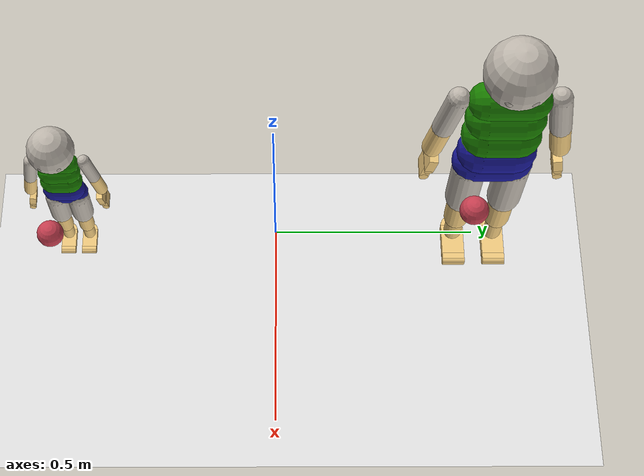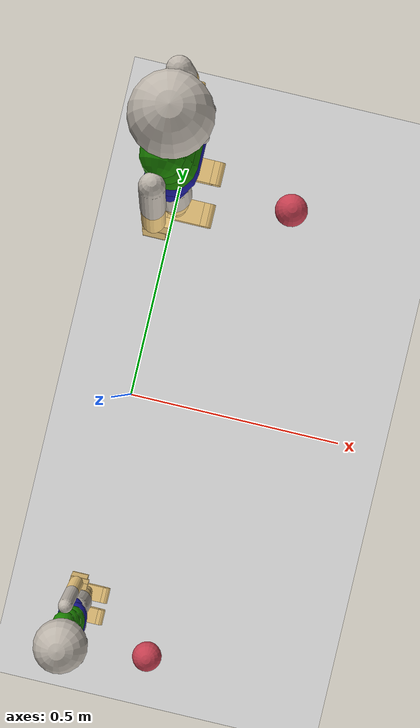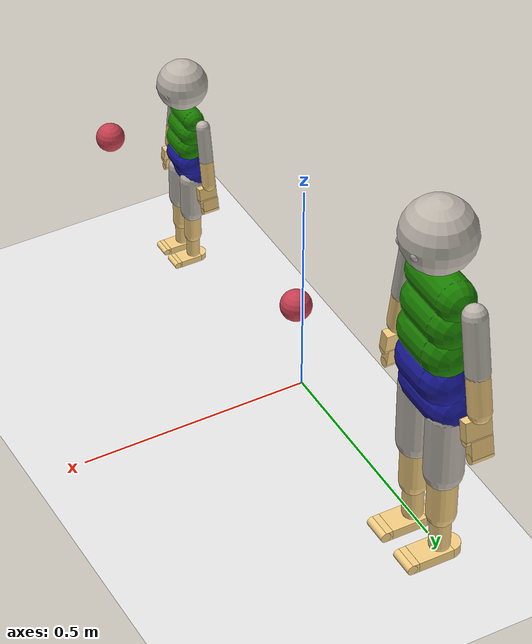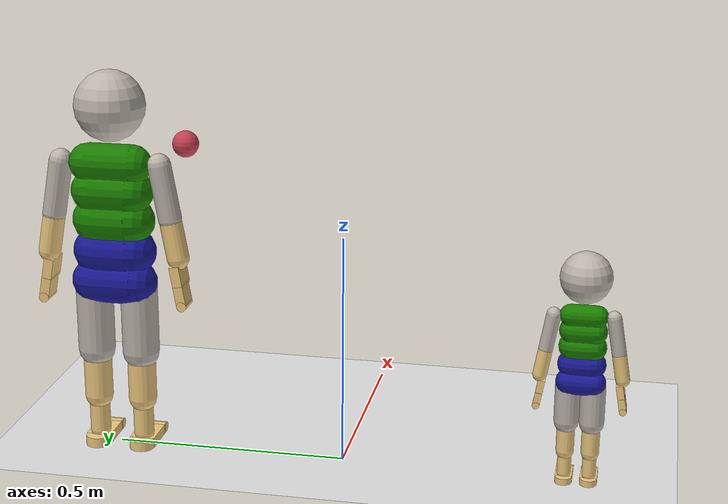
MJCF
<mujoco model="MIMo">

    <compiler inertiafromgeom="true" angle="degree" />
    <option timestep="0.005" iterations="50" tolerance="1e-10" solver="Newton" jacobian="dense" cone="elliptic" impratio="1.0" />
    <size nconmax="1000" njmax="5000" nstack="10000000" />

    <visual>
        <map force="0.1" fogend="10" shadowclip="3" />
        <headlight active="0" />
        <quality shadowsize="0" />
    </visual>

    <default>
		<default class="mimo">
        	<joint limited="true" damping=".1" stiffness=".1" armature="0.001" solimplimit="0.98 0.99 0.001 .5 1" solreflimit="0.02 1" />
        	<geom condim="3" material="skin" friction="1 0.005 0.0002" solimp="0.95 0.99 0.001 0.5 1" solref="0.005 1" />
        	<motor ctrlrange="-1 1" ctrllimited="true" forcelimited="true" />
		</default>
    </default>

    <asset>

        <!-- MIMo. -->
        <texture name="tex_head_default" type="cube" fileright="tex/head_front.png" fileleft="tex/head_back.png" fileup="tex/head_left.png" filedown="tex/head_right.png" filefront="tex/head_top.png" rgb1="0.95 .8 .5" />
		<texture name="tex_head_happy" type="cube" fileright="tex/head_front_happy.png" fileleft="tex/head_back.png" fileup="tex/head_left.png" filedown="tex/head_right.png" filefront="tex/head_top.png" rgb1="0.95 .8 .5" />
		<texture name="tex_head_sad" type="cube" fileright="tex/head_front_sad.png" fileleft="tex/head_back.png" fileup="tex/head_left.png" filedown="tex/head_right.png" filefront="tex/head_top.png" rgb1="0.95 .8 .5" />
		<texture name="tex_head_surprised" type="cube" fileright="tex/head_front_surprised.png" fileleft="tex/head_back.png" fileup="tex/head_left.png" filedown="tex/head_right.png" filefront="tex/head_top.png" rgb1="0.95 .8 .5" />
		<texture name="tex_head_angry" type="cube" fileright="tex/head_front_angry.png" fileleft="tex/head_back.png" fileup="tex/head_left.png" filedown="tex/head_right.png" filefront="tex/head_top.png" rgb1="0.95 .8 .5" />
		<texture name="tex_head_disgusted" type="cube" fileright="tex/head_front_disgusted.png" fileleft="tex/head_back.png" fileup="tex/head_left.png" filedown="tex/head_right.png" filefront="tex/head_top.png" rgb1="0.95 .8 .5" />
		<texture name="tex_head_scared" type="cube" fileright="tex/head_front_scared.png" fileleft="tex/head_back.png" fileup="tex/head_left.png" filedown="tex/head_right.png" filefront="tex/head_top.png" rgb1="0.95 .8 .5" />
		<texture name="tex_top_sleeve" type="cube" fileright="tex/sleeve_right.png" fileleft="tex/sleeve_left.png" fileup="tex/sleeve_up.png" filedown="tex/sleeve_down.png" filefront="tex/sleeve_front.png" fileback="tex/sleeve_back.png" rgb1="0.95 .8 .5" />
		<texture name="tex_pants_leg" type="cube" fileright="tex/leg_right.png" fileleft="tex/leg_left.png" fileup="tex/leg_up.png" filedown="tex/leg_down.png" filefront="tex/leg_front.png" fileback="tex/leg_back.png" rgb1="0.95 .8 .5" />
		<texture name="tex_eye_left" type="cube" fileright="tex/eye_pupil_left.png" rgb1="1 1 1" />
		<texture name="tex_eye_right" type="cube" fileright="tex/eye_pupil_right.png" rgb1="1 1 1" />
		<material name="skin" rgba="0.95 0.8 0.5 1" specular=".15" shininess=".7" />
		<material name="buttons" rgba=".05 .05 .05 1" specular=".9" shininess=".9" />
		<material name="head" texture="tex_head_default" texuniform="true" specular=".0" shininess=".0" />
		<material name="head_happy" texture="tex_head_happy" texuniform="true" specular=".0" shininess=".0" />
		<material name="head_sad" texture="tex_head_sad" texuniform="true" specular=".0" shininess=".0" />
		<material name="head_surprised" texture="tex_head_surprised" texuniform="true" specular=".0" shininess=".0" />
		<material name="head_angry" texture="tex_head_angry" texuniform="true" specular=".0" shininess=".0" />
		<material name="head_scared" texture="tex_head_scared" texuniform="true" specular=".0" shininess=".0" />
		<material name="top_up" rgba=".1 .5 0.0 1" specular=".0" shininess=".0" />
		<material name="top_middle" rgba=".1 .5 0.0 1" specular=".0" shininess=".0" />
		<material name="top_down" rgba=".1 .5 0.0 1" specular=".0" shininess=".0" />
		<material name="top_sleeve" texture="tex_top_sleeve" texuniform="true" specular=".0" shininess=".0" />
		<material name="pants_up" rgba="0.1 0.1 0.6 1" specular=".0" shininess=".0" />
		<material name="pants_down" rgba="0.1 0.1 0.6 1" specular=".0" shininess=".0" />
		<material name="pants_leg" texture="tex_pants_leg" texuniform="true" specular=".0" shininess=".0" />
		<material name="eye_left" texture="tex_eye_left" texuniform="true" specular=".0" shininess=".0" />
		<material name="eye_right" texture="tex_eye_right" texuniform="true" specular=".0" shininess=".0" />

        <!-- Floor. -->
		<texture name="texfloor" builtin="checker" height="100" width="100" rgb1="0.9 0.9 0.9" rgb2="0.9 0.9 0.9" type="2d" mark="edge" markrgb="0.7 0.7 0.7"/>
        <material name="matfloor" reflectance="0" shininess="0" specular="0" texrepeat="25 25" texture="texfloor"/>

        <!-- Colors. -->
        <material name="red" rgba=".79 .25 .32 1" shininess="0.99" reflectance="0"/>

        <!-- Misc. -->
		<texture type="skybox" builtin="gradient" rgb1=".8 .8 .8" rgb2=".9 .9 .9" width="100" height="100"/>
		<material name="mattransparent" reflectance="0" shininess="0" specular="0" rgba="1 1 1 0"/>

    </asset>

    <include file="mimo_ages/MIMo_meta_0.xml" />
    <include file="mimo_ages/MIMo_meta_24.xml" />

    <worldbody>

        <light pos="0 0 5" dir="0 0 -1" directional="true" ambient="0.2 0.2 0.2" diffuse="0.1 0.1 0.1" specular="0 0 0" />
        <light pos="2 2 2" dir="-1 -1 -1" directional="true" ambient="0.05 0.05 0.05" diffuse="0.2 0.2 0.2" specular="0.3 0.3 0.3" castshadow="false" />
        <light pos="2 -2 2" dir="-1 1 -1" directional="true" ambient="0.05 0.05 0.05" diffuse="0.2 0.2 0.2" specular="0.3 0.3 0.3" castshadow="false" />
        <light pos="-2 2 2" dir="1 -1 -1" directional="true" ambient="0.05 0.05 0.05" diffuse="0.2 0.2 0.2" specular="0.3 0.3 0.3" castshadow="false" />
        <light pos="-2 -2 2" dir="1 1 -1" directional="true" ambient="0.05 0.05 0.05" diffuse="0.2 0.2 0.2" specular="0.3 0.3 0.3" castshadow="false" />

        <geom name="transparent" size="2 2 .0001" type="plane"  material="mattransparent" pos="0 0 0" conaffinity="1"/>
        <geom name="floor" size="2 2 .01" type="plane"  material="matfloor" pos="0 0 -0.01" conaffinity="1"/>

        <body name="mimo_location_0" pos="0 -0.5 0.22" euler="0 0 0">
			<freejoint/>
			<include file="mimo_ages/MIMo_model_0.xml" />
		</body>

        <geom name="ball1" type="sphere" size="0.03" pos="0.18 -0.5 0.37" material="red"/>
        <camera name="main1" pos="0.18 -0.5 0.57" euler="0 0 -90" fovy="60"/>

        <body name="mimo_location_24" pos="0 0.5 0.37" euler="0 0 0">
			<freejoint/>
			<include file="mimo_ages/MIMo_model_24.xml" />
		</body>

        <geom name="ball2" type="sphere" size="0.03" pos="0.25 0.41 0.62" material="red"/>
        <camera name="main2" pos="0.25 0.41 0.82" euler="0 0 -90" fovy="60"/>

	</worldbody>

</mujoco>

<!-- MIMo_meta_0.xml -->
<mujoco model="MIMo">

	<size nuser_actuator="3" />

	<contact>
		<pair geom1="lb_0" geom2="ub1_0" condim="1" />
		<exclude body1="left_eye_0" body2="upper_body_0" />
		<exclude body1="right_eye_0" body2="upper_body_0" />
	</contact>

	<tendon>
		<fixed class="mimo" name="hip_bend_0" limited="true" range="-.01 .01">
			<joint joint="robot:hip_bend1_0" coef="1" />
			<joint joint="robot:hip_bend2_0" coef="-1" />
		</fixed>
		<fixed class="mimo" name="hip_rotation_0" limited="true" range="-.01 .01">
			<joint joint="robot:hip_rot1_0" coef="1" />
			<joint joint="robot:hip_rot2_0" coef="-1" />
		</fixed>
		<fixed class="mimo" name="hip_lean_0" limited="true" range="-.01 .01">
			<joint joint="robot:hip_lean1_0" coef="1" />
			<joint joint="robot:hip_lean2_0" coef="-.5" />
		</fixed>
		<fixed class="mimo" name="head_limits1_0" limited="true" range="-2.1 2.1">
			<joint joint="robot:head_swivel_0" coef="1" />
			<joint joint="robot:head_tilt_side_0" coef="1" />
		</fixed>
		<fixed class="mimo" name="head_limits2_0" limited="true" range="-2.1 2.1">
			<joint joint="robot:head_tilt_0" coef="1" />
			<joint joint="robot:head_tilt_side_0" coef="1" />
		</fixed>
		<fixed class="mimo" name="head_limits3_0" limited="true" range="-2.1 2.1">
			<joint joint="robot:head_swivel_0" coef="1" />
			<joint joint="robot:head_tilt_0" coef="1" />
		</fixed>
		<fixed class="mimo" name="head_limits1_sym_0" limited="true" range="-2.1 2.1">
			<joint joint="robot:head_swivel_0" coef="1" />
			<joint joint="robot:head_tilt_side_0" coef="-1" />
		</fixed>
		<fixed class="mimo" name="head_limits2_sym_0" limited="true" range="-2.1 2.1">
			<joint joint="robot:head_tilt_0" coef="1" />
			<joint joint="robot:head_tilt_side_0" coef="-1" />
		</fixed>
		<fixed class="mimo" name="head_limits3_sym_0" limited="true" range="-2.1 2.1">
			<joint joint="robot:head_swivel_0" coef="1" />
			<joint joint="robot:head_tilt_0" coef="-1" />
		</fixed>
	</tendon>

	<sensor>
		<accelerometer name="vestibular_acc_0" site="vestibular_0" />
		<gyro name="vestibular_gyro_0" site="vestibular_0" />

		<torque name="proprio:neck_0" site="torque_neck_0" />
		<torque name="proprio:left_eye_0" site="torque_left_eye_0" />
		<torque name="proprio:right_eye_0" site="torque_right_eye_0" />

		<torque name="proprio:trunk_upper_0" site="torque_ub_0" />
		<torque name="proprio:trunk_lower_0" site="torque_lb_0" />

		<torque name="proprio:right_shoulder_0" site="torque_right_shoulder_0" />
		<torque name="proprio:right_elbow_0" site="torque_right_elbow_0" />
		<torque name="proprio:right_wrist_0" site="torque_right_wrist_0" />
		<torque name="proprio:right_fingers_0" site="torque_right_fingers_0" />

		<torque name="proprio:left_shoulder_0" site="torque_left_shoulder_0" />
		<torque name="proprio:left_elbow_0" site="torque_left_elbow_0" />
		<torque name="proprio:left_wrist_0" site="torque_left_wrist_0" />
		<torque name="proprio:left_fingers_0" site="torque_left_fingers_0" />

		<torque name="proprio:right_hip_0" site="torque_right_hip_0" />
		<torque name="proprio:right_knee_0" site="torque_right_knee_0" />
		<torque name="proprio:right_ankle_0" site="torque_right_ankle_0" />
		<torque name="proprio:right_toes_0" site="torque_right_toes_0" />

		<torque name="proprio:left_hip_0" site="torque_left_hip_0" />
		<torque name="proprio:left_knee_0" site="torque_left_knee_0" />
		<torque name="proprio:left_ankle_0" site="torque_left_ankle_0" />
		<torque name="proprio:left_toes_0" site="torque_left_toes_0" />
	</sensor>

    <actuator>
		<motor class="mimo" name="act:hip_bend_0" joint="robot:hip_bend1_0" gear="1.9656450510895171" forcerange="-1 .765" user=".8574 32.93 22.97" />
		<motor class="mimo" name="act:hip_twist_0" joint="robot:hip_rot1_0" gear="0.6744131886063277" forcerange="-1 1" user="1.699 8.136 8.136" />
		<motor class="mimo" name="act:hip_lean_0" joint="robot:hip_lean1_0" gear="1.346968489640737" forcerange="-1 1" user="1.278 1.264 1.264" />

		<motor class="mimo" name="act:head_swivel_0" joint="robot:head_swivel_0" gear="0.7170287341631916" forcerange="-1 1" user=".6665 24.87 24.87" />
		<motor class="mimo" name="act:head_tilt_0" joint="robot:head_tilt_0" gear="1.3145526792991844" forcerange="-1 .55" user=".9338 31.39 16.86" />
		<motor class="mimo" name="act:head_tilt_side_0" joint="robot:head_tilt_side_0" gear="0.7170287341631916" forcerange="-1 1" user="1.068 15.69 15.69" />

		<motor class="mimo" name="act:left_eye_horizontal_0" joint="robot:left_eye_horizontal_0" gear="0.002151086202489574" forcerange="-1 1" user="5.110 .03025 .03025" />
		<motor class="mimo" name="act:left_eye_vertical_0" joint="robot:left_eye_vertical_0" gear="0.002151086202489574" forcerange="-1 1" user="6.179 .02619 .02771" />
		<motor class="mimo" name="act:left_eye_torsional_0" joint="robot:left_eye_torsional_0" gear="0.0014738923980021155" forcerange="-1 1" user="25.03 .003686 .003686" />
		<motor class="mimo" name="act:right_eye_horizontal_0" joint="robot:right_eye_horizontal_0" gear="0.002151086202489574" forcerange="-1 1" user="5.110 .03025 .03025" />
		<motor class="mimo" name="act:right_eye_vertical_0" joint="robot:right_eye_vertical_0" gear="0.002151086202489574" forcerange="-1 1" user="6.179 .02619 .02771" />
		<motor class="mimo" name="act:right_eye_torsional_0" joint="robot:right_eye_torsional_0" gear="0.0014738923980021155" forcerange="-1 1" user="25.03 .003686 .003686" />

		<motor class="mimo" name="act:right_shoulder_horizontal_0" joint="robot:right_shoulder_horizontal_0" gear="0.4993398493928391" forcerange="-1 1" user="1.811 18.80 15.30" />
		<motor class="mimo" name="act:right_shoulder_abduction_0" joint="robot:right_shoulder_ad_ab_0" gear="1.1096441097618646" forcerange="-.6875 1" user=".8793 44.17 69.23" />
		<motor class="mimo" name="act:right_shoulder_internal_0" joint="robot:right_shoulder_rotation_0" gear="0.6935275686011654" forcerange="-1 .64" user="1.498 25.09 17.10" />
		<motor class="mimo" name="act:right_elbow_0" joint="robot:right_elbow_0" gear="1.1132438625653438" forcerange="-1 .83" user="1.566 35.43 27.04" />
		<motor class="mimo" name="act:right_wrist_rotation_0" joint="robot:right_hand1_0" gear="0.248617332016975" forcerange="-1 1" user="1.513 7.842 7.842" />
		<motor class="mimo" name="act:right_wrist_flexion_0" joint="robot:right_hand2_0" gear="0.44040784528721294" forcerange="-1 .57" user="1.455 13.66 7.874" />
		<motor class="mimo" name="act:right_wrist_ulnar_0" joint="robot:right_hand3_0" gear="0.3374092363087518" forcerange="-.87 1" user="2.254 5.155 6.021" />
		<motor class="mimo" name="act:right_fingers_0" joint="robot:right_fingers_0" gear="0.24506565584530396" forcerange="-1 .33" user="3.019 6.854 2.551" />

		<motor class="mimo" name="act:left_shoulder_horizontal_0" joint="robot:left_shoulder_horizontal_0" gear="0.4993398493928391" forcerange="-1 1" user="1.811 18.80 15.30" />
		<motor class="mimo" name="act:left_shoulder_abduction_0" joint="robot:left_shoulder_ad_ab_0" gear="1.1096441097618646" forcerange="-.6875 1" user=".8793 44.17 69.23" />
		<motor class="mimo" name="act:left_shoulder_internal_0" joint="robot:left_shoulder_rotation_0" gear="0.6935275686011654" forcerange="-1 .64" user="1.498 25.09 17.10" />
		<motor class="mimo" name="act:left_elbow_0" joint="robot:left_elbow_0" gear="1.1132438625653438" forcerange="-1 .83" user="1.566 35.43 27.04" />
		<motor class="mimo" name="act:left_wrist_rotation_0" joint="robot:left_hand1_0" gear="0.248617332016975" forcerange="-1 1" user="1.513 7.842 7.842" />
		<motor class="mimo" name="act:left_wrist_flexion_0" joint="robot:left_hand2_0" gear="0.44040784528721294" forcerange="-1 .57" user="1.455 13.66 7.874" />
		<motor class="mimo" name="act:left_wrist_ulnar_0" joint="robot:left_hand3_0" gear="0.3374092363087518" forcerange="-.87 1" user="2.254 5.155 6.021" />
		<motor class="mimo" name="act:left_fingers_0" joint="robot:left_fingers_0" gear="0.24506565584530396" forcerange="-1 .33" user="3.019 6.854 2.551" />

		<motor class="mimo" name="act:right_hip_flex_0" joint="robot:right_hip1_0" gear="2.6261705346445345" forcerange="-1 1" user="1.083 71.25 92.49" />
		<motor class="mimo" name="act:right_hip_abduction_0" joint="robot:right_hip2_0" gear="2.048413017022737" forcerange="-1 1" user="1.488 24.81 29.20" />
		<motor class="mimo" name="act:right_hip_rotation_0" joint="robot:right_hip3_0" gear="1.1620804615802063" forcerange="-.75 1" user="1.860 12.32 15.78" />
		<motor class="mimo" name="act:right_knee_0" joint="robot:right_knee_0" gear="2.8438505152820945" forcerange="-.65 1" user="1.450 63.16 89.27" />
		<motor class="mimo" name="act:right_foot_flexion_0" joint="robot:right_foot1_0" gear="1.2797273955413133" forcerange="-1 .5" user="1.430 21.34 11.87" />
		<motor class="mimo" name="act:right_foot_inversion_0" joint="robot:right_foot2_0" gear="0.3927205764095036" forcerange="-.91 1" user="1.988 4.184 4.645" />
		<motor class="mimo" name="act:right_foot_rotation_0" joint="robot:right_foot3_0" gear="0.40626266525121063" forcerange="-1 1" user="2.688 3.868 3.625" />
		<motor class="mimo" name="act:right_toes_0" joint="robot:right_toes_0" gear="0.11172223294408291" forcerange="-1 .3" user="1.290 2.947 .8440" />

		<motor class="mimo" name="act:left_hip_flex_0" joint="robot:left_hip1_0" gear="2.6261705346445345" forcerange="-1 1" user="1.083 71.25 92.49" />
		<motor class="mimo" name="act:left_hip_abduction_0" joint="robot:left_hip2_0" gear="2.048413017022737" forcerange="-1 1" user="1.488 24.81 29.20" />
		<motor class="mimo" name="act:left_hip_rotation_0" joint="robot:left_hip3_0" gear="1.1620804615802063" forcerange="-.75 1" user="1.860 12.32 15.78" />
		<motor class="mimo" name="act:left_knee_0" joint="robot:left_knee_0" gear="2.8438505152820945" forcerange="-.65 1" user="1.450 63.16 89.27" />
		<motor class="mimo" name="act:left_foot_flexion_0" joint="robot:left_foot1_0" gear="1.2797273955413133" forcerange="-1 .5" user="1.430 21.34 11.87" />
		<motor class="mimo" name="act:left_foot_inversion_0" joint="robot:left_foot2_0" gear="0.3927205764095036" forcerange="-.91 1" user="1.988 4.184 4.645" />
		<motor class="mimo" name="act:left_foot_rotation_0" joint="robot:left_foot3_0" gear="0.40626266525121063" forcerange="-1 1" user="2.688 3.868 3.625" />
		<motor class="mimo" name="act:left_toes_0" joint="robot:left_toes_0" gear="0.11172223294408291" forcerange="-1 .3" user="1.290 2.947 .8440" />
	</actuator>

	<equality>
		<joint name="robot:hip_lean1_0" joint1="robot:hip_lean1_0" active="false" polycoef="0 1 0 0 0" />
		<joint name="robot:hip_rot1_0" joint1="robot:hip_rot1_0" active="false" polycoef="0 1 0 0 0" />
		<joint name="robot:hip_bend1_0" joint1="robot:hip_bend1_0" active="false" polycoef="0 1 0 0 0" />
		<joint name="robot:hip_lean2_0" joint1="robot:hip_lean2_0" active="false" polycoef="0 1 0 0 0" />
		<joint name="robot:hip_rot2_0" joint1="robot:hip_rot2_0" active="false" polycoef="0 1 0 0 0" />
		<joint name="robot:hip_bend2_0" joint1="robot:hip_bend2_0" active="false" polycoef="0 1 0 0 0" />
		<joint name="robot:head_swivel_0" joint1="robot:head_swivel_0" active="false" polycoef="0 1 0 0 0" />
		<joint name="robot:head_tilt_0" joint1="robot:head_tilt_0" active="false" polycoef="0 1 0 0 0" />
		<joint name="robot:head_tilt_side_0" joint1="robot:head_tilt_side_0" active="false" polycoef="0 1 0 0 0" />
		<joint name="robot:left_eye_horizontal_0" joint1="robot:left_eye_horizontal_0" active="false" polycoef="0 1 0 0 0" />
		<joint name="robot:left_eye_vertical_0" joint1="robot:left_eye_vertical_0" active="false" polycoef="0 1 0 0 0" />
		<joint name="robot:left_eye_torsional_0" joint1="robot:left_eye_torsional_0" active="false" polycoef="0 1 0 0 0" />
		<joint name="robot:right_eye_horizontal_0" joint1="robot:right_eye_horizontal_0" active="false" polycoef="0 1 0 0 0" />
		<joint name="robot:right_eye_vertical_0" joint1="robot:right_eye_vertical_0" active="false" polycoef="0 1 0 0 0" />
		<joint name="robot:right_eye_torsional_0" joint1="robot:right_eye_torsional_0" active="false" polycoef="0 1 0 0 0" />
		<joint name="robot:right_shoulder_horizontal_0" joint1="robot:right_shoulder_horizontal_0" active="false" polycoef="0 1 0 0 0" />
		<joint name="robot:right_shoulder_ad_ab_0" joint1="robot:right_shoulder_ad_ab_0" active="false" polycoef="0 1 0 0 0" />
		<joint name="robot:right_shoulder_rotation_0" joint1="robot:right_shoulder_rotation_0" active="false" polycoef="0 1 0 0 0" />
		<joint name="robot:right_elbow_0" joint1="robot:right_elbow_0" active="false" polycoef="0 1 0 0 0" />
		<joint name="robot:right_hand1_0" joint1="robot:right_hand1_0" active="false" polycoef="0 1 0 0 0" />
		<joint name="robot:right_hand2_0" joint1="robot:right_hand2_0" active="false" polycoef="0 1 0 0 0" />
		<joint name="robot:right_hand3_0" joint1="robot:right_hand3_0" active="false" polycoef="0 1 0 0 0" />
		<joint name="robot:right_fingers_0" joint1="robot:right_fingers_0" active="false" polycoef="0 1 0 0 0" />
		<joint name="robot:left_shoulder_horizontal_0" joint1="robot:left_shoulder_horizontal_0" active="false" polycoef="0 1 0 0 0" />
		<joint name="robot:left_shoulder_ad_ab_0" joint1="robot:left_shoulder_ad_ab_0" active="false" polycoef="0 1 0 0 0" />
		<joint name="robot:left_shoulder_rotation_0" joint1="robot:left_shoulder_rotation_0" active="false" polycoef="0 1 0 0 0" />
		<joint name="robot:left_elbow_0" joint1="robot:left_elbow_0" active="false" polycoef="0 1 0 0 0" />
		<joint name="robot:left_hand1_0" joint1="robot:left_hand1_0" active="false" polycoef="0 1 0 0 0" />
		<joint name="robot:left_hand2_0" joint1="robot:left_hand2_0" active="false" polycoef="0 1 0 0 0" />
		<joint name="robot:left_hand3_0" joint1="robot:left_hand3_0" active="false" polycoef="0 1 0 0 0" />
		<joint name="robot:left_fingers_0" joint1="robot:left_fingers_0" active="false" polycoef="0 1 0 0 0" />
		<joint name="robot:right_hip1_0" joint1="robot:right_hip1_0" active="false" polycoef="0 1 0 0 0" />
		<joint name="robot:right_hip2_0" joint1="robot:right_hip2_0" active="false" polycoef="0 1 0 0 0" />
		<joint name="robot:right_hip3_0" joint1="robot:right_hip3_0" active="false" polycoef="0 1 0 0 0" />
		<joint name="robot:right_knee_0" joint1="robot:right_knee_0" active="false" polycoef="0 1 0 0 0" />
		<joint name="robot:right_foot1_0" joint1="robot:right_foot1_0" active="false" polycoef="0 1 0 0 0" />
		<joint name="robot:right_foot2_0" joint1="robot:right_foot2_0" active="false" polycoef="0 1 0 0 0" />
		<joint name="robot:right_foot3_0" joint1="robot:right_foot3_0" active="false" polycoef="0 1 0 0 0" />
		<joint name="robot:right_toes_0" joint1="robot:right_toes_0" active="false" polycoef="0 1 0 0 0" />
		<joint name="robot:left_hip1_0" joint1="robot:left_hip1_0" active="false" polycoef="0 1 0 0 0" />
		<joint name="robot:left_hip2_0" joint1="robot:left_hip2_0" active="false" polycoef="0 1 0 0 0" />
		<joint name="robot:left_hip3_0" joint1="robot:left_hip3_0" active="false" polycoef="0 1 0 0 0" />
		<joint name="robot:left_knee_0" joint1="robot:left_knee_0" active="false" polycoef="0 1 0 0 0" />
		<joint name="robot:left_foot1_0" joint1="robot:left_foot1_0" active="false" polycoef="0 1 0 0 0" />
		<joint name="robot:left_foot2_0" joint1="robot:left_foot2_0" active="false" polycoef="0 1 0 0 0" />
		<joint name="robot:left_foot3_0" joint1="robot:left_foot3_0" active="false" polycoef="0 1 0 0 0" />
		<joint name="robot:left_toes_0" joint1="robot:left_toes_0" active="false" polycoef="0 1 0 0 0" />
	</equality>

</mujoco>

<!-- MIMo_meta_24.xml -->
<mujoco model="MIMo">

	<size nuser_actuator="3" />

	<contact>
		<pair geom1="lb_24" geom2="ub1_24" condim="1" />
		<exclude body1="left_eye_24" body2="upper_body_24" />
		<exclude body1="right_eye_24" body2="upper_body_24" />
	</contact>

	<tendon>
		<fixed class="mimo" name="hip_bend_24" limited="true" range="-.01 .01">
			<joint joint="robot:hip_bend1_24" coef="1" />
			<joint joint="robot:hip_bend2_24" coef="-1" />
		</fixed>
		<fixed class="mimo" name="hip_rotation_24" limited="true" range="-.01 .01">
			<joint joint="robot:hip_rot1_24" coef="1" />
			<joint joint="robot:hip_rot2_24" coef="-1" />
		</fixed>
		<fixed class="mimo" name="hip_lean_24" limited="true" range="-.01 .01">
			<joint joint="robot:hip_lean1_24" coef="1" />
			<joint joint="robot:hip_lean2_24" coef="-.5" />
		</fixed>
		<fixed class="mimo" name="head_limits1_24" limited="true" range="-2.1 2.1">
			<joint joint="robot:head_swivel_24" coef="1" />
			<joint joint="robot:head_tilt_side_24" coef="1" />
		</fixed>
		<fixed class="mimo" name="head_limits2_24" limited="true" range="-2.1 2.1">
			<joint joint="robot:head_tilt_24" coef="1" />
			<joint joint="robot:head_tilt_side_24" coef="1" />
		</fixed>
		<fixed class="mimo" name="head_limits3_24" limited="true" range="-2.1 2.1">
			<joint joint="robot:head_swivel_24" coef="1" />
			<joint joint="robot:head_tilt_24" coef="1" />
		</fixed>
		<fixed class="mimo" name="head_limits1_sym_24" limited="true" range="-2.1 2.1">
			<joint joint="robot:head_swivel_24" coef="1" />
			<joint joint="robot:head_tilt_side_24" coef="-1" />
		</fixed>
		<fixed class="mimo" name="head_limits2_sym_24" limited="true" range="-2.1 2.1">
			<joint joint="robot:head_tilt_24" coef="1" />
			<joint joint="robot:head_tilt_side_24" coef="-1" />
		</fixed>
		<fixed class="mimo" name="head_limits3_sym_24" limited="true" range="-2.1 2.1">
			<joint joint="robot:head_swivel_24" coef="1" />
			<joint joint="robot:head_tilt_24" coef="-1" />
		</fixed>
	</tendon>

	<sensor>
		<accelerometer name="vestibular_acc_24" site="vestibular_24" />
		<gyro name="vestibular_gyro_24" site="vestibular_24" />

		<torque name="proprio:neck_24" site="torque_neck_24" />
		<torque name="proprio:left_eye_24" site="torque_left_eye_24" />
		<torque name="proprio:right_eye_24" site="torque_right_eye_24" />

		<torque name="proprio:trunk_upper_24" site="torque_ub_24" />
		<torque name="proprio:trunk_lower_24" site="torque_lb_24" />

		<torque name="proprio:right_shoulder_24" site="torque_right_shoulder_24" />
		<torque name="proprio:right_elbow_24" site="torque_right_elbow_24" />
		<torque name="proprio:right_wrist_24" site="torque_right_wrist_24" />
		<torque name="proprio:right_fingers_24" site="torque_right_fingers_24" />

		<torque name="proprio:left_shoulder_24" site="torque_left_shoulder_24" />
		<torque name="proprio:left_elbow_24" site="torque_left_elbow_24" />
		<torque name="proprio:left_wrist_24" site="torque_left_wrist_24" />
		<torque name="proprio:left_fingers_24" site="torque_left_fingers_24" />

		<torque name="proprio:right_hip_24" site="torque_right_hip_24" />
		<torque name="proprio:right_knee_24" site="torque_right_knee_24" />
		<torque name="proprio:right_ankle_24" site="torque_right_ankle_24" />
		<torque name="proprio:right_toes_24" site="torque_right_toes_24" />

		<torque name="proprio:left_hip_24" site="torque_left_hip_24" />
		<torque name="proprio:left_knee_24" site="torque_left_knee_24" />
		<torque name="proprio:left_ankle_24" site="torque_left_ankle_24" />
		<torque name="proprio:left_toes_24" site="torque_left_toes_24" />
	</sensor>

    <actuator>
		<motor class="mimo" name="act:hip_bend_24" joint="robot:hip_bend1_24" gear="11.445274022776466" forcerange="-1 .765" user=".8574 32.93 22.97" />
		<motor class="mimo" name="act:hip_twist_24" joint="robot:hip_rot1_24" gear="3.9268756807824734" forcerange="-1 1" user="1.699 8.136 8.136" />
		<motor class="mimo" name="act:hip_lean_24" joint="robot:hip_lean1_24" gear="7.842933522223948" forcerange="-1 1" user="1.278 1.264 1.264" />

		<motor class="mimo" name="act:head_swivel_24" joint="robot:head_swivel_24" gear="1.9723820572800088" forcerange="-1 1" user=".6665 24.87 24.87" />
		<motor class="mimo" name="act:head_tilt_24" joint="robot:head_tilt_24" gear="3.6160337716800153" forcerange="-1 .55" user=".9338 31.39 16.86" />
		<motor class="mimo" name="act:head_tilt_side_24" joint="robot:head_tilt_side_24" gear="1.9723820572800088" forcerange="-1 1" user="1.068 15.69 15.69" />

		<motor class="mimo" name="act:left_eye_horizontal_24" joint="robot:left_eye_horizontal_24" gear="0.005917146171840027" forcerange="-1 1" user="5.110 .03025 .03025" />
		<motor class="mimo" name="act:left_eye_vertical_24" joint="robot:left_eye_vertical_24" gear="0.005917146171840027" forcerange="-1 1" user="6.179 .02619 .02771" />
		<motor class="mimo" name="act:left_eye_torsional_24" joint="robot:left_eye_torsional_24" gear="0.004054340895520018" forcerange="-1 1" user="25.03 .003686 .003686" />
		<motor class="mimo" name="act:right_eye_horizontal_24" joint="robot:right_eye_horizontal_24" gear="0.005917146171840027" forcerange="-1 1" user="5.110 .03025 .03025" />
		<motor class="mimo" name="act:right_eye_vertical_24" joint="robot:right_eye_vertical_24" gear="0.005917146171840027" forcerange="-1 1" user="6.179 .02619 .02771" />
		<motor class="mimo" name="act:right_eye_torsional_24" joint="robot:right_eye_torsional_24" gear="0.004054340895520018" forcerange="-1 1" user="25.03 .003686 .003686" />

		<motor class="mimo" name="act:right_shoulder_horizontal_24" joint="robot:right_shoulder_horizontal_24" gear="2.1532200911365003" forcerange="-1 1" user="1.811 18.80 15.30" />
		<motor class="mimo" name="act:right_shoulder_abduction_24" joint="robot:right_shoulder_ad_ab_24" gear="4.78493353585889" forcerange="-.6875 1" user=".8793 44.17 69.23" />
		<motor class="mimo" name="act:right_shoulder_internal_24" joint="robot:right_shoulder_rotation_24" gear="2.9905834599118064" forcerange="-1 .64" user="1.498 25.09 17.10" />
		<motor class="mimo" name="act:right_elbow_24" joint="robot:right_elbow_24" gear="4.3602089879735" forcerange="-1 .83" user="1.566 35.43 27.04" />
		<motor class="mimo" name="act:right_wrist_rotation_24" joint="robot:right_hand1_24" gear="0.8041257744098732" forcerange="-1 1" user="1.513 7.842 7.842" />
		<motor class="mimo" name="act:right_wrist_flexion_24" joint="robot:right_hand2_24" gear="1.4244513718117757" forcerange="-1 .57" user="1.455 13.66 7.874" />
		<motor class="mimo" name="act:right_wrist_ulnar_24" joint="robot:right_hand3_24" gear="1.091313550984828" forcerange="-.87 1" user="2.254 5.155 6.021" />
		<motor class="mimo" name="act:right_fingers_24" joint="robot:right_fingers_24" gear="0.7926382633468751" forcerange="-1 .33" user="3.019 6.854 2.551" />

		<motor class="mimo" name="act:left_shoulder_horizontal_24" joint="robot:left_shoulder_horizontal_24" gear="2.1532200911365003" forcerange="-1 1" user="1.811 18.80 15.30" />
		<motor class="mimo" name="act:left_shoulder_abduction_24" joint="robot:left_shoulder_ad_ab_24" gear="4.78493353585889" forcerange="-.6875 1" user=".8793 44.17 69.23" />
		<motor class="mimo" name="act:left_shoulder_internal_24" joint="robot:left_shoulder_rotation_24" gear="2.9905834599118064" forcerange="-1 .64" user="1.498 25.09 17.10" />
		<motor class="mimo" name="act:left_elbow_24" joint="robot:left_elbow_24" gear="4.3602089879735" forcerange="-1 .83" user="1.566 35.43 27.04" />
		<motor class="mimo" name="act:left_wrist_rotation_24" joint="robot:left_hand1_24" gear="0.8041257744098732" forcerange="-1 1" user="1.513 7.842 7.842" />
		<motor class="mimo" name="act:left_wrist_flexion_24" joint="robot:left_hand2_24" gear="1.4244513718117757" forcerange="-1 .57" user="1.455 13.66 7.874" />
		<motor class="mimo" name="act:left_wrist_ulnar_24" joint="robot:left_hand3_24" gear="1.091313550984828" forcerange="-.87 1" user="2.254 5.155 6.021" />
		<motor class="mimo" name="act:left_fingers_24" joint="robot:left_fingers_24" gear="0.7926382633468751" forcerange="-1 .33" user="3.019 6.854 2.551" />

		<motor class="mimo" name="act:right_hip_flex_24" joint="robot:right_hip1_24" gear="10.79160451329873" forcerange="-1 1" user="1.083 71.25 92.49" />
		<motor class="mimo" name="act:right_hip_abduction_24" joint="robot:right_hip2_24" gear="8.41745152037301" forcerange="-1 1" user="1.488 24.81 29.20" />
		<motor class="mimo" name="act:right_hip_rotation_24" joint="robot:right_hip3_24" gear="4.775284997134688" forcerange="-.75 1" user="1.860 12.32 15.78" />
		<motor class="mimo" name="act:right_knee_24" joint="robot:right_knee_24" gear="12.524757082073558" forcerange="-.65 1" user="1.450 63.16 89.27" />
		<motor class="mimo" name="act:right_foot_flexion_24" joint="robot:right_foot1_24" gear="5.14155614876697" forcerange="-1 .5" user="1.430 21.34 11.87" />
		<motor class="mimo" name="act:right_foot_inversion_24" joint="robot:right_foot2_24" gear="1.5778320456533557" forcerange="-.91 1" user="1.988 4.184 4.645" />
		<motor class="mimo" name="act:right_foot_rotation_24" joint="robot:right_foot3_24" gear="1.6322400472276095" forcerange="-1 1" user="2.688 3.868 3.625" />
		<motor class="mimo" name="act:right_toes_24" joint="robot:right_toes_24" gear="0.4488660129875926" forcerange="-1 .3" user="1.290 2.947 .8440" />

		<motor class="mimo" name="act:left_hip_flex_24" joint="robot:left_hip1_24" gear="10.79160451329873" forcerange="-1 1" user="1.083 71.25 92.49" />
		<motor class="mimo" name="act:left_hip_abduction_24" joint="robot:left_hip2_24" gear="8.41745152037301" forcerange="-1 1" user="1.488 24.81 29.20" />
		<motor class="mimo" name="act:left_hip_rotation_24" joint="robot:left_hip3_24" gear="4.775284997134688" forcerange="-.75 1" user="1.860 12.32 15.78" />
		<motor class="mimo" name="act:left_knee_24" joint="robot:left_knee_24" gear="12.524757082073558" forcerange="-.65 1" user="1.450 63.16 89.27" />
		<motor class="mimo" name="act:left_foot_flexion_24" joint="robot:left_foot1_24" gear="5.14155614876697" forcerange="-1 .5" user="1.430 21.34 11.87" />
		<motor class="mimo" name="act:left_foot_inversion_24" joint="robot:left_foot2_24" gear="1.5778320456533557" forcerange="-.91 1" user="1.988 4.184 4.645" />
		<motor class="mimo" name="act:left_foot_rotation_24" joint="robot:left_foot3_24" gear="1.6322400472276095" forcerange="-1 1" user="2.688 3.868 3.625" />
		<motor class="mimo" name="act:left_toes_24" joint="robot:left_toes_24" gear="0.4488660129875926" forcerange="-1 .3" user="1.290 2.947 .8440" />
	</actuator>

	<equality>
		<joint name="robot:hip_lean1_24" joint1="robot:hip_lean1_24" active="false" polycoef="0 1 0 0 0" />
		<joint name="robot:hip_rot1_24" joint1="robot:hip_rot1_24" active="false" polycoef="0 1 0 0 0" />
		<joint name="robot:hip_bend1_24" joint1="robot:hip_bend1_24" active="false" polycoef="0 1 0 0 0" />
		<joint name="robot:hip_lean2_24" joint1="robot:hip_lean2_24" active="false" polycoef="0 1 0 0 0" />
		<joint name="robot:hip_rot2_24" joint1="robot:hip_rot2_24" active="false" polycoef="0 1 0 0 0" />
		<joint name="robot:hip_bend2_24" joint1="robot:hip_bend2_24" active="false" polycoef="0 1 0 0 0" />
		<joint name="robot:head_swivel_24" joint1="robot:head_swivel_24" active="false" polycoef="0 1 0 0 0" />
		<joint name="robot:head_tilt_24" joint1="robot:head_tilt_24" active="false" polycoef="0 1 0 0 0" />
		<joint name="robot:head_tilt_side_24" joint1="robot:head_tilt_side_24" active="false" polycoef="0 1 0 0 0" />
		<joint name="robot:left_eye_horizontal_24" joint1="robot:left_eye_horizontal_24" active="false" polycoef="0 1 0 0 0" />
		<joint name="robot:left_eye_vertical_24" joint1="robot:left_eye_vertical_24" active="false" polycoef="0 1 0 0 0" />
		<joint name="robot:left_eye_torsional_24" joint1="robot:left_eye_torsional_24" active="false" polycoef="0 1 0 0 0" />
		<joint name="robot:right_eye_horizontal_24" joint1="robot:right_eye_horizontal_24" active="false" polycoef="0 1 0 0 0" />
		<joint name="robot:right_eye_vertical_24" joint1="robot:right_eye_vertical_24" active="false" polycoef="0 1 0 0 0" />
		<joint name="robot:right_eye_torsional_24" joint1="robot:right_eye_torsional_24" active="false" polycoef="0 1 0 0 0" />
		<joint name="robot:right_shoulder_horizontal_24" joint1="robot:right_shoulder_horizontal_24" active="false" polycoef="0 1 0 0 0" />
		<joint name="robot:right_shoulder_ad_ab_24" joint1="robot:right_shoulder_ad_ab_24" active="false" polycoef="0 1 0 0 0" />
		<joint name="robot:right_shoulder_rotation_24" joint1="robot:right_shoulder_rotation_24" active="false" polycoef="0 1 0 0 0" />
		<joint name="robot:right_elbow_24" joint1="robot:right_elbow_24" active="false" polycoef="0 1 0 0 0" />
		<joint name="robot:right_hand1_24" joint1="robot:right_hand1_24" active="false" polycoef="0 1 0 0 0" />
		<joint name="robot:right_hand2_24" joint1="robot:right_hand2_24" active="false" polycoef="0 1 0 0 0" />
		<joint name="robot:right_hand3_24" joint1="robot:right_hand3_24" active="false" polycoef="0 1 0 0 0" />
		<joint name="robot:right_fingers_24" joint1="robot:right_fingers_24" active="false" polycoef="0 1 0 0 0" />
		<joint name="robot:left_shoulder_horizontal_24" joint1="robot:left_shoulder_horizontal_24" active="false" polycoef="0 1 0 0 0" />
		<joint name="robot:left_shoulder_ad_ab_24" joint1="robot:left_shoulder_ad_ab_24" active="false" polycoef="0 1 0 0 0" />
		<joint name="robot:left_shoulder_rotation_24" joint1="robot:left_shoulder_rotation_24" active="false" polycoef="0 1 0 0 0" />
		<joint name="robot:left_elbow_24" joint1="robot:left_elbow_24" active="false" polycoef="0 1 0 0 0" />
		<joint name="robot:left_hand1_24" joint1="robot:left_hand1_24" active="false" polycoef="0 1 0 0 0" />
		<joint name="robot:left_hand2_24" joint1="robot:left_hand2_24" active="false" polycoef="0 1 0 0 0" />
		<joint name="robot:left_hand3_24" joint1="robot:left_hand3_24" active="false" polycoef="0 1 0 0 0" />
		<joint name="robot:left_fingers_24" joint1="robot:left_fingers_24" active="false" polycoef="0 1 0 0 0" />
		<joint name="robot:right_hip1_24" joint1="robot:right_hip1_24" active="false" polycoef="0 1 0 0 0" />
		<joint name="robot:right_hip2_24" joint1="robot:right_hip2_24" active="false" polycoef="0 1 0 0 0" />
		<joint name="robot:right_hip3_24" joint1="robot:right_hip3_24" active="false" polycoef="0 1 0 0 0" />
		<joint name="robot:right_knee_24" joint1="robot:right_knee_24" active="false" polycoef="0 1 0 0 0" />
		<joint name="robot:right_foot1_24" joint1="robot:right_foot1_24" active="false" polycoef="0 1 0 0 0" />
		<joint name="robot:right_foot2_24" joint1="robot:right_foot2_24" active="false" polycoef="0 1 0 0 0" />
		<joint name="robot:right_foot3_24" joint1="robot:right_foot3_24" active="false" polycoef="0 1 0 0 0" />
		<joint name="robot:right_toes_24" joint1="robot:right_toes_24" active="false" polycoef="0 1 0 0 0" />
		<joint name="robot:left_hip1_24" joint1="robot:left_hip1_24" active="false" polycoef="0 1 0 0 0" />
		<joint name="robot:left_hip2_24" joint1="robot:left_hip2_24" active="false" polycoef="0 1 0 0 0" />
		<joint name="robot:left_hip3_24" joint1="robot:left_hip3_24" active="false" polycoef="0 1 0 0 0" />
		<joint name="robot:left_knee_24" joint1="robot:left_knee_24" active="false" polycoef="0 1 0 0 0" />
		<joint name="robot:left_foot1_24" joint1="robot:left_foot1_24" active="false" polycoef="0 1 0 0 0" />
		<joint name="robot:left_foot2_24" joint1="robot:left_foot2_24" active="false" polycoef="0 1 0 0 0" />
		<joint name="robot:left_foot3_24" joint1="robot:left_foot3_24" active="false" polycoef="0 1 0 0 0" />
		<joint name="robot:left_toes_24" joint1="robot:left_toes_24" active="false" polycoef="0 1 0 0 0" />
	</equality>

</mujoco>
